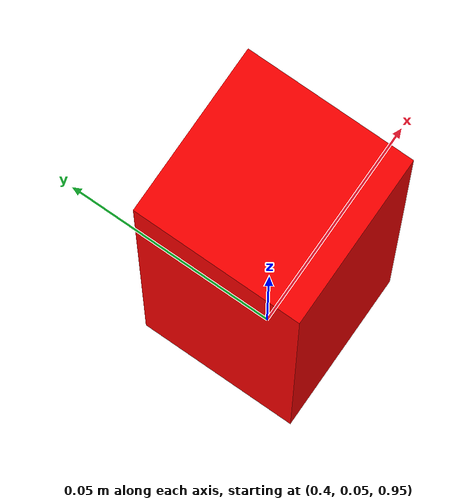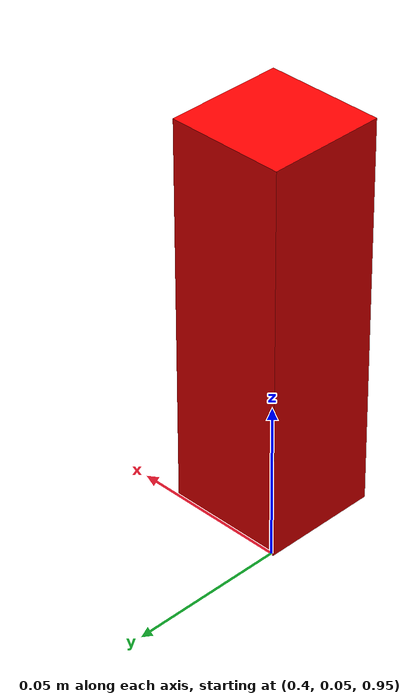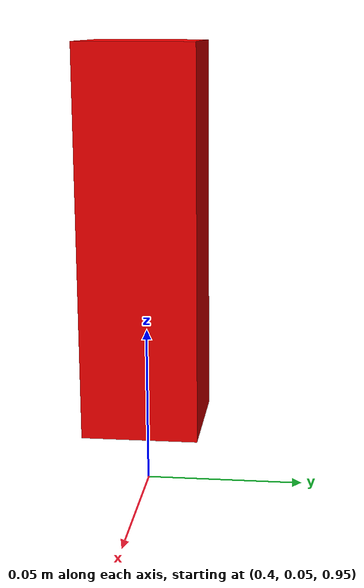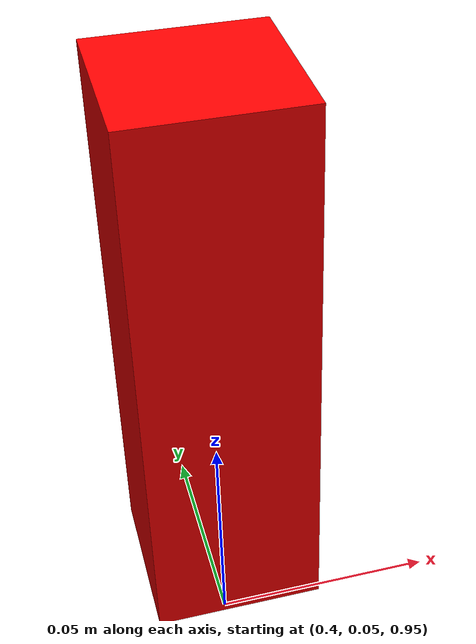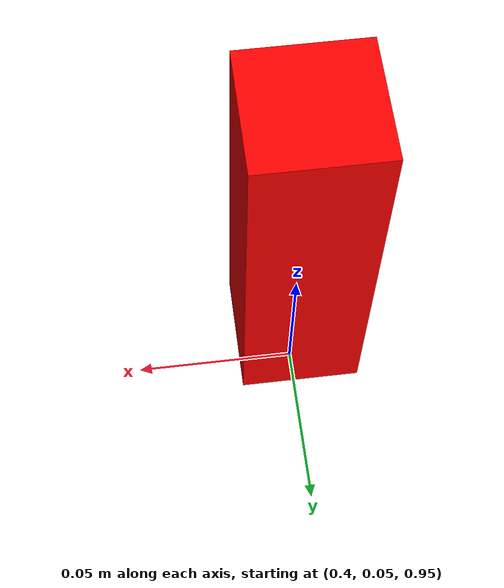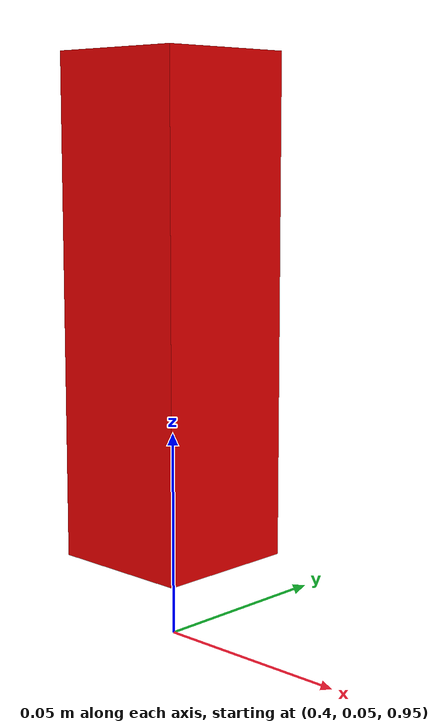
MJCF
<mujoco model="box">
  <worldbody>
      <body name="box" pos="0.4 0.05 1.03">
            <joint name="red_box_joint" type="free" frictionloss="0.01" />
            <inertial pos="0 0 0.05" mass="0.005" diaginertia="0.01 0.01 0.01" />
            <geom contype="1" conaffinity="1"  condim="4" solimp="0.9 1 0.5" solref="0.01 1" friction="1 0.05 0.01" pos="0 0 0" size="0.018 0.018 0.06" type="box" name="red_box" rgba="1 0 0 1" />
        </body>
  </worldbody>
</mujoco>
